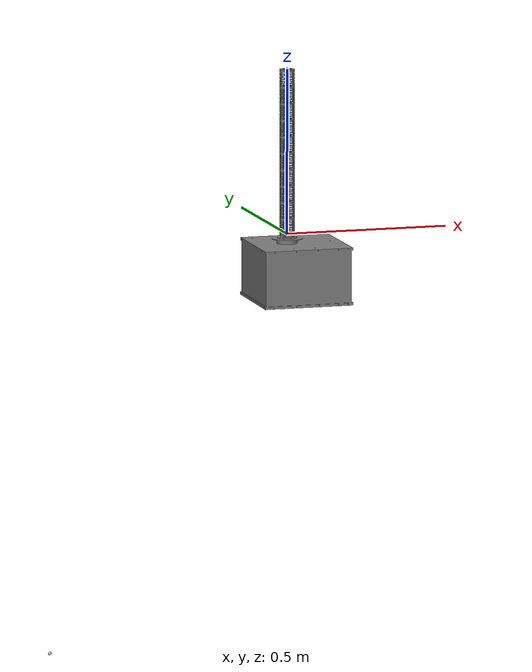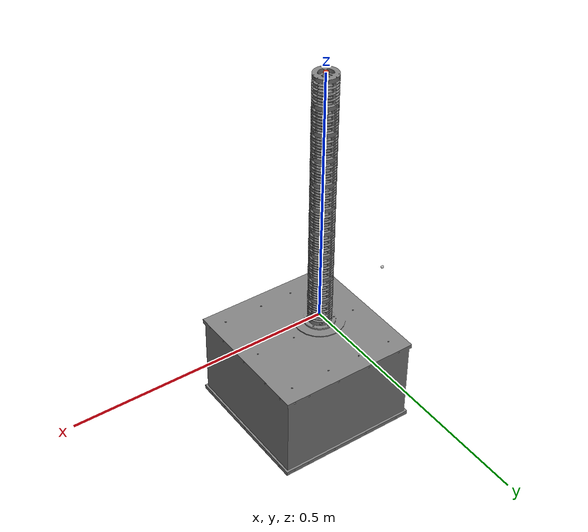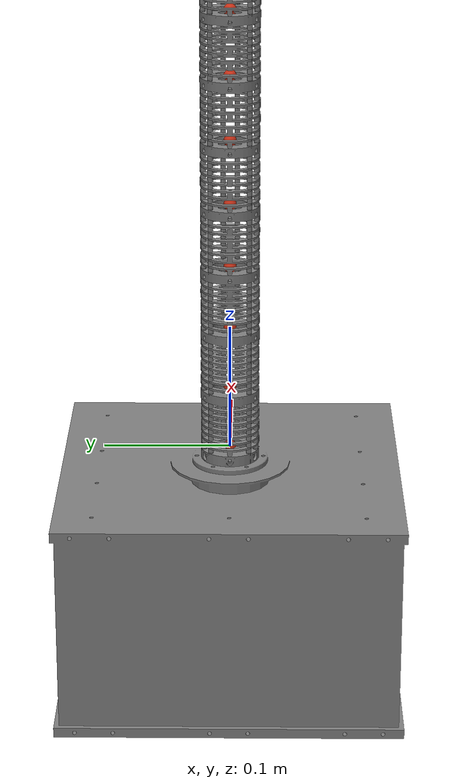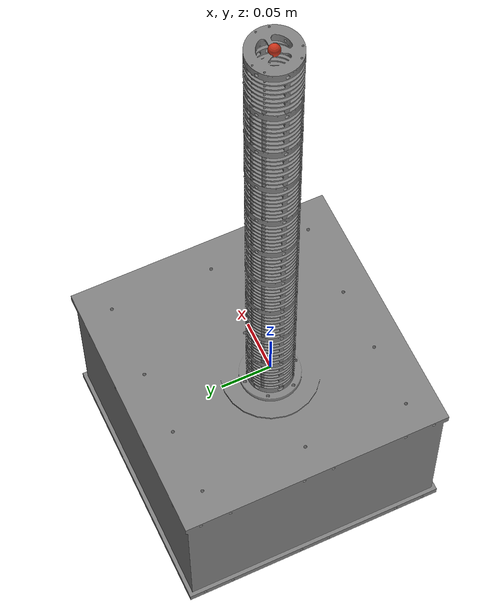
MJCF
<mujoco model="tendon">
	<!-- diy robosuite model -->
	<!-- https://docs.google.com/document/d/1bSUKkpjmbKqWyV5Oc7_4VL4FGKAQZx8aWm_nvlmTVmE/edit?pli=1&tab=t.0 -->
    <actuator>
	<motor name="torq_j1" joint="joint_1" ctrlrange="0 1" ctrllimited="true" gear="10 0"/>
	<motor name="torq_j2" joint="joint_2" ctrlrange="0 1" ctrllimited="true" gear="10 0"/>
	<motor name="torq_j3" joint="joint_3" ctrlrange="0 1" ctrllimited="true" gear="10 0"/>
	<motor name="torq_j4" joint="joint_4" ctrlrange="0 1" ctrllimited="true" gear="10 0"/>
	<motor name="torq_j5" joint="joint_5" ctrlrange="0 1" ctrllimited="true" gear="10 0"/>
	<motor name="torq_j6" joint="joint_6" ctrlrange="0 1" ctrllimited="true" gear="10 0"/>
    </actuator>

	<asset>
		<mesh name="base" file="./meshes/base.STL" scale="1 1 1"/>
		<mesh name="s1" file="./meshes/s1.STL" scale="1 1 1"/>
		<mesh name="s2" file="./meshes/s1.STL" scale="1 1 1"/>
		<mesh name="s3" file="./meshes/s1.STL" scale="1 1 1"/>
		<mesh name="s4" file="./meshes/s1.STL" scale="1 1 1"/>
		<mesh name="s5" file="./meshes/s1.STL" scale="1 1 1"/>
		<mesh name="s6" file="./meshes/s1.STL" scale="1 1 1"/>
		<mesh name="s7" file="./meshes/s1.STL" scale="1 1 1"/>
		<mesh name="s8" file="./meshes/s1.STL" scale="1 1 1"/>
		<mesh name="s9" file="./meshes/s1.STL" scale="1 1 1"/>
		<mesh name="s10" file="./meshes/s1.STL" scale="1 1 1"/>

	</asset>

    <option timestep="0.002" tolerance="1e-10" jacobian="dense" gravity="0 0 0" />

    <worldbody>
		<site name="waypoint" type="sphere" size="0.005" pos="-1 -1 -1" rgba=".8 .8 .8 1" />

    	<body name="base" pos="0 0 0">
			<!-- robot view -->
			<camera mode="fixed" name="robotview" pos="-0.25 -0.6 0.2" quat="0.61237244 0.35355339 -0.61237244 0.35355339"/>
			<!-- base mesh and visual -->
			<geom mesh="base" pos="0.0000 0.0000 0.0000" density="0.1" type="mesh" group="1" />

			<!-- tendon for each wire -->
			<body>
				<geom type="sphere" pos="0.02028   0.00544 -0.15" size="0.005"/>
				<joint name="joint_1" type="slide" axis="0 0 -1" damping='0.1' group="1" limited="true" range="-.1 .1"/>
				<site name="end_1" pos="0.02028   0.00544 -0.15"/>
			</body>

			<body>
				<geom type="sphere" pos="0.02028  -0.00544 -0.15" size="0.005"/>
				<joint name="joint_2" type="slide" axis="0 0 -1" damping='0.1' group="1" limited="true" range="-.1 .1"/>
				<site name="end_2" pos="0.02028  -0.00544 -0.15"/>
			</body>

			<body >
				<geom type="sphere" pos="-0.00544 -0.02028 -0.15" size="0.005"/>
				<joint name="joint_3" type="slide" axis="0 0 -1" damping='0.1' limited="true" range="-.1 .1"/>
				<site name="end_3" pos="-0.00544 -0.02028 -0.15"/>
			</body>

			<body >
				<geom type="sphere" pos="-0.01485 -0.01485 -0.15" size="0.005"/>
				<joint name="joint_4" type="slide" axis="0 0 -1" damping='0.1' limited="true" range="-.1 .1"/>
				<site name="end_4" pos="-0.01485 -0.01485 -0.15"/>
			</body>

			<body >
				<geom type="sphere" pos="-0.01485  0.01485 -0.15" size="0.005"/>
				<joint name="joint_5" type="slide" axis="0 0 -1" damping='0.1' limited="true" range="-.1 .1"/>
				<site name="end_5" pos="-0.01485  0.01485 -0.15"/>
			</body>

			<body >
				<geom type="sphere" pos="-0.00544  0.02028 -0.15" size="0.005"/>
				<joint name="joint_6" type="slide" axis="0 0 -1" damping='0.1' limited="true" range="-.1 .1"/>
				<site name="end_6" pos="-0.00544  0.02028 -0.15"/>
			</body>

			<!-- tendon body geom -->
			<body name="s1">
			<geom type="sphere" pos="0 0 0.0000" size="0.005"  rgba=".8 .2 .1 1"/>
			<joint type="hinge" pos="0 0 0.0000" axis="1 0 0"  damping="0.9000" stiffness="0.35"/>
			<joint type="hinge" pos="0 0 0.0000" axis="0 1 0"  damping="0.9000" stiffness="0.35"/>
			<geom mesh="s1" pos="0 0.0000 0.0000" density="0.1" type="mesh" group="1" name="s1_vis" />
			<geom mesh="s1" pos="0 0.0000 0.0000" density="0.1" type="mesh" group="0" name="s1_col" contype="1" conaffinity="1"/>
			<site name="s_1_1" pos="0.02028   0.00544  -0.0000" size="0.002"/>
			<site name="s_1_2" pos="0.02028  -0.00544  -0.0000" size="0.002"/>
			<site name="s_1_3" pos="-0.00544 -0.02028  -0.0000" size="0.002"/>
			<site name="s_1_4" pos="-0.01485 -0.01485  -0.0000" size="0.002"/>
			<site name="s_1_5" pos="-0.01485  0.01485  -0.0000" size="0.002"/>
			<site name="s_1_6" pos="-0.00544  0.02028  -0.0000" size="0.002"/>

			<body name="s2">
			<geom type="sphere" pos="0 0 0.050" size="0.005"  rgba=".8 .2 .1 1"/>
			<joint type="hinge" pos="0 0 0.050" axis="1 0 0"  damping="0.9000" stiffness="0.35"/>
			<joint type="hinge" pos="0 0 0.050" axis="0 1 0"  damping="0.9000" stiffness="0.35"/>
			<geom mesh="s2" pos="0 0.0000 0.050" density="0.1" type="mesh" group="1" name="s2_vis" />
			<geom mesh="s2" pos="0 0.0000 0.050" density="0.1" type="mesh" group="0" name="s2_col" contype="1" conaffinity="1"/>
			<site name="s_2_1" pos="0.02028   0.00544  0.0500" size="0.002"/>
			<site name="s_2_2" pos="0.02028  -0.00544  0.0500" size="0.002"/>
			<site name="s_2_3" pos="-0.00544 -0.02028  0.0500" size="0.002"/>
			<site name="s_2_4" pos="-0.01485 -0.01485  0.0500" size="0.002"/>
			<site name="s_2_5" pos="-0.01485  0.01485  0.0500" size="0.002"/>
			<site name="s_2_6" pos="-0.00544  0.02028  0.0500" size="0.002"/>

			<body name="s3">
			<geom type="sphere" pos="0 0 0.100" size="0.005"  rgba=".8 .2 .1 1"/>
			<joint type="hinge" pos="0 0 0.100" axis="1 0 0"  damping="0.9000" stiffness="0.35"/>
			<joint type="hinge" pos="0 0 0.100" axis="0 1 0"  damping="0.9000" stiffness="0.35"/>
			<geom mesh="s3" pos="0 0.0000 0.100" density="0.1" type="mesh" group="1" name="s3_vis" />
			<geom mesh="s3" pos="0 0.0000 0.100" density="0.1" type="mesh" group="0" name="s3_col" contype="1" conaffinity="1"/>
			<site name="s_3_1" pos="0.02028   0.00544  0.1000" size="0.002"/>
			<site name="s_3_2" pos="0.02028  -0.00544  0.1000" size="0.002"/>
			<site name="s_3_3" pos="-0.00544 -0.02028  0.1000" size="0.002"/>
			<site name="s_3_4" pos="-0.01485 -0.01485  0.1000" size="0.002"/>
			<site name="s_3_5" pos="-0.01485  0.01485  0.1000" size="0.002"/>
			<site name="s_3_6" pos="-0.00544  0.02028  0.1000" size="0.002"/>

			<body name="s4">
			<geom type="sphere" pos="0 0 0.150" size="0.005"  rgba=".8 .2 .1 1"/>
			<joint type="hinge" pos="0 0 0.150" axis="1 0 0"  damping="0.9000" stiffness="0.35"/>
			<joint type="hinge" pos="0 0 0.150" axis="0 1 0"  damping="0.9000" stiffness="0.35"/>
			<geom mesh="s4" pos="0 0.0000 0.150" density="0.1" type="mesh" group="1" name="s4_vis" />
			<geom mesh="s4" pos="0 0.0000 0.150" density="0.1" type="mesh" group="0" name="s4_col" contype="1" conaffinity="1"/>
			<site name="s_4_1" pos="0.02028   0.00544  0.1500" size="0.002"/>
			<site name="s_4_2" pos="0.02028  -0.00544  0.1500" size="0.002"/>
			<site name="s_4_3" pos="-0.00544 -0.02028  0.1500" size="0.002"/>
			<site name="s_4_4" pos="-0.01485 -0.01485  0.1500" size="0.002"/>
			<site name="s_4_5" pos="-0.01485  0.01485  0.1500" size="0.002"/>
			<site name="s_4_6" pos="-0.00544  0.02028  0.1500" size="0.002"/>

			<body name="s5">
			<geom type="sphere" pos="0 0 0.200" size="0.005"  rgba=".8 .2 .1 1"/>
			<joint type="hinge" pos="0 0 0.200" axis="1 0 0"  damping="0.9000" stiffness="0.35"/>
			<joint type="hinge" pos="0 0 0.200" axis="0 1 0"  damping="0.9000" stiffness="0.35"/>
			<geom mesh="s5" pos="0 0.0000 0.200" density="0.1" type="mesh" group="1" name="s5_vis" />
			<geom mesh="s5" pos="0 0.0000 0.200" density="0.1" type="mesh" group="0" name="s5_col" contype="1" conaffinity="1"/>
			<site name="s_5_1" pos="0.02028   0.00544  0.2000" size="0.002"/>
			<site name="s_5_2" pos="0.02028  -0.00544  0.2000" size="0.002"/>
			<site name="s_5_3" pos="-0.00544 -0.02028  0.2000" size="0.002"/>
			<site name="s_5_4" pos="-0.01485 -0.01485  0.2000" size="0.002"/>
			<site name="s_5_5" pos="-0.01485  0.01485  0.2000" size="0.002"/>
			<site name="s_5_6" pos="-0.00544  0.02028  0.2000" size="0.002"/>

			<body name="s6">
			<geom type="sphere" pos="0 0 0.250" size="0.005"  rgba=".8 .2 .1 1"/>
			<joint type="hinge" pos="0 0 0.250" axis="1 0 0"  damping="0.9000" stiffness="0.35"/>
			<joint type="hinge" pos="0 0 0.250" axis="0 1 0"  damping="0.9000" stiffness="0.35"/>
			<geom mesh="s6" pos="0 0.0000 0.250" density="0.1" type="mesh"  group="1" name="s6_vis" />
			<geom mesh="s6" pos="0 0.0000 0.250" density="0.1" type="mesh"  group="0" name="s6_col" contype="1" conaffinity="1"/>
			<site name="s_6_1" pos="0.02028   0.00544  0.2500" size="0.002"/>
			<site name="s_6_2" pos="0.02028  -0.00544  0.2500" size="0.002"/>
			<site name="s_6_3" pos="-0.00544 -0.02028  0.2500" size="0.002"/>
			<site name="s_6_4" pos="-0.01485 -0.01485  0.2500" size="0.002"/>
			<site name="s_6_5" pos="-0.01485  0.01485  0.2500" size="0.002"/>
			<site name="s_6_6" pos="-0.00544  0.02028  0.2500" size="0.002"/>

			<body name="s7">
			<geom type="sphere" pos="0 0 0.300" size="0.005"  rgba=".8 .2 .1 1"/>
			<joint type="hinge" pos="0 0 0.300" axis="1 0 0"  damping="0.9000" stiffness="0.35"/>
			<joint type="hinge" pos="0 0 0.300" axis="0 1 0"  damping="0.9000" stiffness="0.35"/>
			<geom mesh="s7" pos="0 0.0000 0.300" density="0.1" type="mesh"  group="1" name="s7_vis" />
			<geom mesh="s7" pos="0 0.0000 0.300" density="0.1" type="mesh"  group="0" name="s7_col" contype="1" conaffinity="1"/>
			<site name="s_7_1" pos="0.02028   0.00544  0.3000" size="0.002"/>
			<site name="s_7_2" pos="0.02028  -0.00544  0.3000" size="0.002"/>
			<site name="s_7_3" pos="-0.00544 -0.02028  0.3000" size="0.002"/>
			<site name="s_7_4" pos="-0.01485 -0.01485  0.3000" size="0.002"/>
			<site name="s_7_5" pos="-0.01485  0.01485  0.3000" size="0.002"/>
			<site name="s_7_6" pos="-0.00544  0.02028  0.3000" size="0.002"/>

			<body name="s8">
			<geom type="sphere" pos="0 0 0.350" size="0.005"  rgba=".8 .2 .1 1"/>
			<joint type="hinge" pos="0 0 0.350" axis="1 0 0"  damping="0.9000" stiffness="0.35"/>
			<joint type="hinge" pos="0 0 0.350" axis="0 1 0"  damping="0.9000" stiffness="0.35"/>
			<geom mesh="s8" pos="0 0.0000 0.350" density="0.1" type="mesh"  group="1" name="s8_vis" />
			<geom mesh="s8" pos="0 0.0000 0.350" density="0.1" type="mesh"  group="0" name="s8_col" contype="1" conaffinity="1"/>
			<site name="s_8_1" pos="0.02028   0.00544  0.3500" size="0.002"/>
			<site name="s_8_2" pos="0.02028  -0.00544  0.3500" size="0.002"/>
			<site name="s_8_3" pos="-0.00544 -0.02028  0.3500" size="0.002"/>
			<site name="s_8_4" pos="-0.01485 -0.01485  0.3500" size="0.002"/>
			<site name="s_8_5" pos="-0.01485  0.01485  0.3500" size="0.002"/>
			<site name="s_8_6" pos="-0.00544  0.02028  0.3500" size="0.002"/>

			<body name="s9">
			<geom type="sphere" pos="0 0 0.400" size="0.005"  rgba=".8 .2 .1 1"/>
			<joint type="hinge" pos="0 0 0.400" axis="1 0 0"  damping="0.9000" stiffness="0.35"/>
			<joint type="hinge" pos="0 0 0.400" axis="0 1 0"  damping="0.9000" stiffness="0.35"/>
			<geom mesh="s9" pos="0 0.0000 0.400" density="0.1" type="mesh" group="1" name="s9_vis" />
			<geom mesh="s9" pos="0 0.0000 0.400" density="0.1" type="mesh" group="0" name="s9_col" contype="1" conaffinity="1"/>
			<site name="s_9_1" pos="0.02028   0.00544  0.4000" size="0.002"/>
			<site name="s_9_2" pos="0.02028  -0.00544  0.4000" size="0.002"/>
			<site name="s_9_3" pos="-0.00544 -0.02028  0.4000" size="0.002"/>
			<site name="s_9_4" pos="-0.01485 -0.01485  0.4000" size="0.002"/>
			<site name="s_9_5" pos="-0.01485  0.01485  0.4000" size="0.002"/>
			<site name="s_9_6" pos="-0.00544  0.02028  0.4000" size="0.002"/>

			<body name="s10">
			<geom type="sphere" pos="0 0 0.450" size="0.005"  rgba=".8 .2 .1 1"/>
			<joint type="hinge" pos="0 0 0.450" axis="1 0 0"  damping="0.9000" stiffness="0.35"/>
			<joint type="hinge" pos="0 0 0.450" axis="0 1 0"  damping="0.9000" stiffness="0.35"/>
			<geom mesh="s10" pos="0 0.0000 0.450" density="0.1" type="mesh" group="1" name="s10_vis" />
			<geom mesh="s10" pos="0 0.0000 0.450" density="0.1" type="mesh" group="0" name="s10_col" contype="1" conaffinity="1"/>
			<site name="s_10_1" pos="0.02028   0.00544  0.4500" size="0.002"/>
			<site name="s_10_2" pos="0.02028  -0.00544  0.4500" size="0.002"/>
			<site name="s_10_3" pos="-0.00544 -0.02028  0.4500" size="0.002"/>
			<site name="s_10_4" pos="-0.01485 -0.01485  0.4500" size="0.002"/>
			<site name="s_10_5" pos="-0.01485  0.01485  0.4500" size="0.002"/>
			<site name="s_10_6" pos="-0.00544  0.02028  0.4500" size="0.002"/>

			<!-- virtual hand  -->
			<!-- pos ,quat should be algin to the real robot -->
			<body name="right_hand" pos="0 0 0.50" quat="1 0 0 0">
				<geom type="sphere" pos="0 0 0.0" size="0.005"  rgba=".8 .2 .1 1"/>

				<!-- This sites were added for visualization. They are all standardized between models-->
				<!-- Position mimics the gripper attachment point (right_hand) -->
				<!--  Y-axis should be perpendicular to grasping motion, and Z-axis should point out of the robot eef -->
				<site name="ee" pos="0 0 0" size="0.001 0.001 0.001" rgba="0 0 1 1" type="sphere" group="1"/>
				<site name="ee_x" pos="0 0 0" size="0.005 .1"  rgba="1 0 0 0" type="cylinder" group="1"/>
				<site name="ee_z" pos="0 0 0" size="0.005 .1"  rgba="0 0 1 0" type="cylinder" group="1"/>
				<site name="ee_y" pos="0 0 0" size="0.005 .1"  rgba="0 1 0 0" type="cylinder" group="1"/>
				<!-- This camera points out from the eef. -->
				<camera mode="fixed" name="eye_in_hand" pos="0.05 0 0" quat="0 0.707108 0.707108 0" fovy="75"/>
				<!-- To add gripper -->
			</body>
			</body>
			</body>
			</body>
			</body>
			</body>
			</body>
			</body>
			</body>
			</body>
			</body>
		</body>
		</worldbody>

    <tendon>

		<spatial width="0.002" limited="true" range="0.45 0.55">
		<site site="end_1"/>
		<site site="s_1_1"/>
		<site site="s_2_1"/>
		<site site="s_3_1"/>
		<site site="s_4_1"/>
		<site site="s_5_1"/>
		<site site="s_6_1"/>
		<site site="s_7_1"/>
		<site site="s_8_1"/>
		<site site="s_9_1"/>
		<site site="s_10_1"/>

        </spatial>

		<spatial width="0.002" limited="true" range="0.45 0.55">
		<site site="end_2"/>
		<site site="s_1_2"/>
		<site site="s_2_2"/>
		<site site="s_3_2"/>
		<site site="s_4_2"/>
		<site site="s_5_2"/>
		<site site="s_6_2"/>
		<site site="s_7_2"/>
		<site site="s_8_2"/>
		<site site="s_9_2"/>
		<site site="s_10_2"/>

        </spatial>

		<spatial width="0.002" limited="true" range="0.45 0.55">
		<site site="end_3"/>
		<site site="s_1_3"/>
		<site site="s_2_3"/>
		<site site="s_3_3"/>
		<site site="s_4_3"/>
		<site site="s_5_3"/>
		<site site="s_6_3"/>
		<site site="s_7_3"/>
		<site site="s_8_3"/>
		<site site="s_9_3"/>
		<site site="s_10_3"/>

        </spatial>

		<spatial width="0.002" limited="true" range="0.45 0.55">
		<site site="end_4"/>
		<site site="s_1_4"/>
		<site site="s_2_4"/>
		<site site="s_3_4"/>
		<site site="s_4_4"/>
		<site site="s_5_4"/>
		<site site="s_6_4"/>
		<site site="s_7_4"/>
		<site site="s_8_4"/>
		<site site="s_9_4"/>
		<site site="s_10_4"/>

        </spatial>

		<spatial width="0.002" limited="true" range="0.45 0.55">
		<site site="end_5"/>
		<site site="s_1_5"/>
		<site site="s_2_5"/>
		<site site="s_3_5"/>
		<site site="s_4_5"/>
		<site site="s_5_5"/>
		<site site="s_6_5"/>
		<site site="s_7_5"/>
		<site site="s_8_5"/>
		<site site="s_9_5"/>
		<site site="s_10_5"/>

        </spatial>

		<spatial width="0.002" limited="true" range="0.45 0.55">
		<site site="end_6"/>
		<site site="s_1_6"/>
		<site site="s_2_6"/>
		<site site="s_3_6"/>
		<site site="s_4_6"/>
		<site site="s_5_6"/>
		<site site="s_6_6"/>
		<site site="s_7_6"/>
		<site site="s_8_6"/>
		<site site="s_9_6"/>
		<site site="s_10_6"/>

        </spatial>
    </tendon>

</mujoco>
